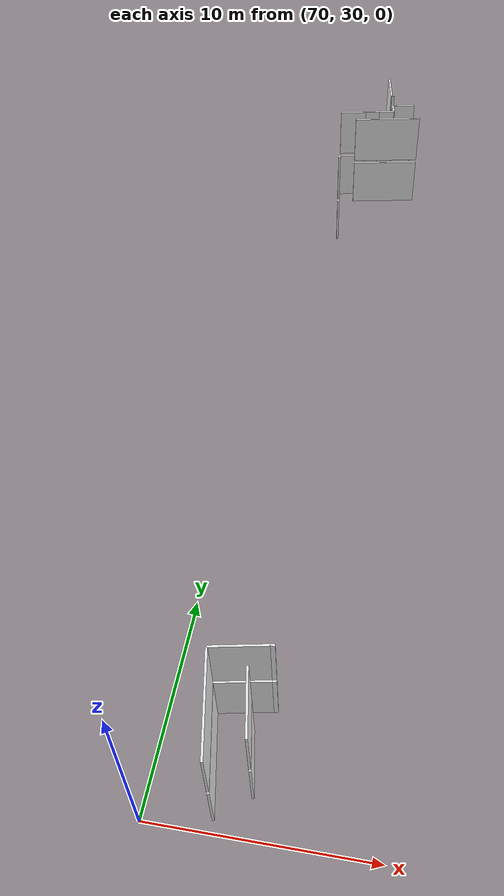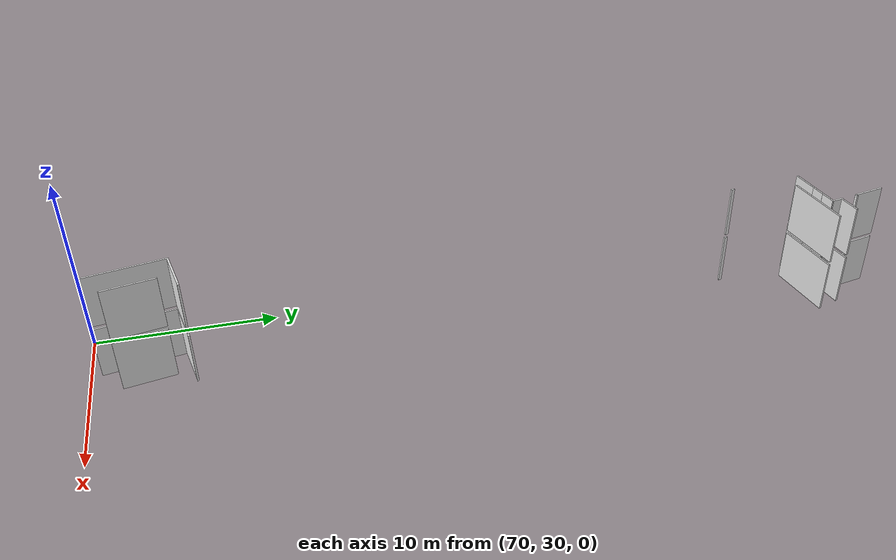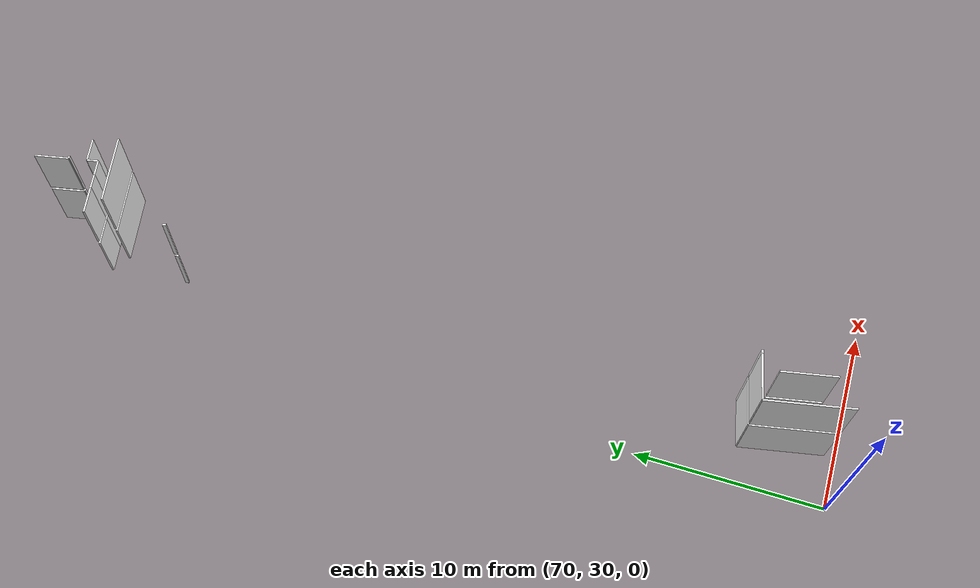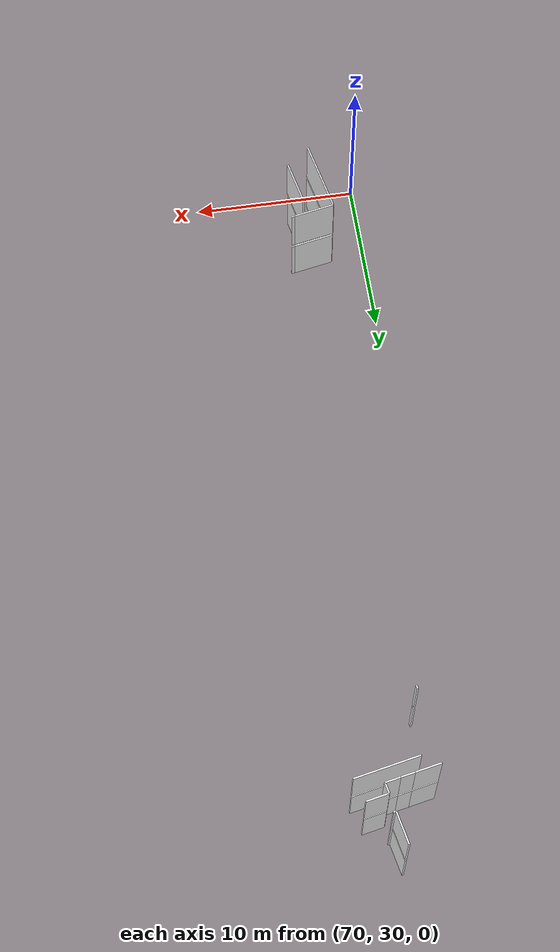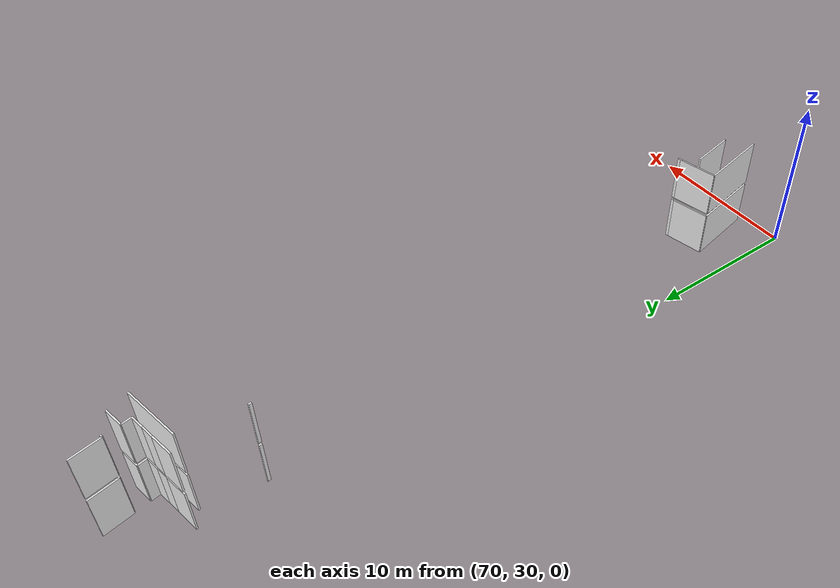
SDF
<sdf version="1.6">
 <world name="default">
  <model name="wall_74.9_72.7_0.0_link">
   <static>true</static>
   <pose>74.86499999999069 72.69500000006519 1.5 0 0 -2.944197095083166</pose>
   <link name="link">
    <visual name="visual">
     <geometry><box><size>0.15297058539043204 0.1 3</size></box></geometry>
     <material>
      <script><uri>file://media/materials/scripts/gazebo.material</uri><name>Gazebo/White</name></script>
     </material>
    </visual>
   </link>
  </model>
  <model name="wall_74.6_73.6_0.0_link">
   <static>true</static>
   <pose>74.60999999998603 73.5800000000745 1.5 0 0 1.7681918866572148</pose>
   <link name="link">
    <visual name="visual">
     <geometry><box><size>1.8356470247080154 0.1 3</size></box></geometry>
     <material>
      <script><uri>file://media/materials/scripts/gazebo.material</uri><name>Gazebo/White</name></script>
     </material>
    </visual>
   </link>
  </model>
  <model name="wall_72.7_70.6_0.0_link">
   <static>true</static>
   <pose>72.72500000000582 70.64500000001863 1.5 0 0 0.19477776480304612</pose>
   <link name="link">
    <visual name="visual">
     <geometry><box><size>1.4983324064140755 0.1 3</size></box></geometry>
     <material>
      <script><uri>file://media/materials/scripts/gazebo.material</uri><name>Gazebo/White</name></script>
     </material>
    </visual>
   </link>
  </model>
  <model name="wall_73.9_70.9_0.0_link">
   <static>true</static>
   <pose>73.85500000001048 70.86499999999069 1.5 0 0 0.18763977169544066</pose>
   <link name="link">
    <visual name="visual">
     <geometry><box><size>0.8041144196810251 0.1 3</size></box></geometry>
     <material>
      <script><uri>file://media/materials/scripts/gazebo.material</uri><name>Gazebo/White</name></script>
     </material>
    </visual>
   </link>
  </model>
  <model name="wall_74.7_71.0_0.0_link">
   <static>true</static>
   <pose>74.67499999998836 71.02499999990687 1.5 0 0 0.19739555977086584</pose>
   <link name="link">
    <visual name="visual">
     <geometry><box><size>0.8668333172733308 0.1 3</size></box></geometry>
     <material>
      <script><uri>file://media/materials/scripts/gazebo.material</uri><name>Gazebo/White</name></script>
     </material>
    </visual>
   </link>
  </model>
  <model name="wall_75.0_71.4_0.0_link">
   <static>true</static>
   <pose>75.03999999997905 71.40500000002794 1.5 0 0 1.7714492040023821</pose>
   <link name="link">
    <visual name="visual">
     <geometry><box><size>0.6020797292489833 0.1 3</size></box></geometry>
     <material>
      <script><uri>file://media/materials/scripts/gazebo.material</uri><name>Gazebo/White</name></script>
     </material>
    </visual>
   </link>
  </model>
  <model name="wall_75.6_71.8_0.0_link">
   <static>true</static>
   <pose>75.61499999999069 71.82500000018626 1.5 0 0 0.1943652660922386</pose>
   <link name="link">
    <visual name="visual">
     <geometry><box><size>1.2943724348298333 0.1 3</size></box></geometry>
     <material>
      <script><uri>file://media/materials/scripts/gazebo.material</uri><name>Gazebo/White</name></script>
     </material>
    </visual>
   </link>
  </model>
  <model name="wall_74.8_70.3_0.0_link">
   <static>true</static>
   <pose>74.83999999999651 70.30000000004657 1.5 0 0 0.19533794952017633</pose>
   <link name="link">
    <visual name="visual">
     <geometry><box><size>3.8125057377015654 0.1 3</size></box></geometry>
     <material>
      <script><uri>file://media/materials/scripts/gazebo.material</uri><name>Gazebo/White</name></script>
     </material>
    </visual>
   </link>
  </model>
  <model name="wall_74.1_33.1_0.0_link">
   <static>true</static>
   <pose>74.06999999997788 33.06499999994412 1.5 0 0 1.7661524605065864</pose>
   <link name="link">
    <visual name="visual">
     <geometry><box><size>2.8848743474229677 0.1 3</size></box></geometry>
     <material>
      <script><uri>file://media/materials/scripts/gazebo.material</uri><name>Gazebo/White</name></script>
     </material>
    </visual>
   </link>
  </model>
  <model name="wall_72.5_66.2_0.0_link">
   <static>true</static>
   <pose>72.52999999999884 66.21500000008382 1.5 0 0 1.77829255318378</pose>
   <link name="link">
    <visual name="visual">
     <geometry><box><size>0.19416487833047835 0.1 3</size></box></geometry>
     <material>
      <script><uri>file://media/materials/scripts/gazebo.material</uri><name>Gazebo/White</name></script>
     </material>
    </visual>
   </link>
  </model>
  <model name="wall_74.6_35.5_0.0_link">
   <static>true</static>
   <pose>74.58499999999185 35.485000000102445 1.5 0 0 -2.9849907776618085</pose>
   <link name="link">
    <visual name="visual">
     <geometry><box><size>0.19235384058705793 0.1 3</size></box></geometry>
     <material>
      <script><uri>file://media/materials/scripts/gazebo.material</uri><name>Gazebo/White</name></script>
     </material>
    </visual>
   </link>
  </model>
  <model name="wall_73.3_35.2_0.0_link">
   <static>true</static>
   <pose>73.27499999999418 35.230000000214204 1.5 0 0 -2.946572386191703</pose>
   <link name="link">
    <visual name="visual">
     <geometry><box><size>2.4769537742856995 0.1 3</size></box></geometry>
     <material>
      <script><uri>file://media/materials/scripts/gazebo.material</uri><name>Gazebo/White</name></script>
     </material>
    </visual>
   </link>
  </model>
  <model name="wall_72.5_32.8_0.0_link">
   <static>true</static>
   <pose>72.5 32.765000000130385 1.5 0 0 -1.3755624583535375</pose>
   <link name="link">
    <visual name="visual">
     <geometry><box><size>4.536176804498029 0.1 3</size></box></geometry>
     <material>
      <script><uri>file://media/materials/scripts/gazebo.material</uri><name>Gazebo/White</name></script>
     </material>
    </visual>
   </link>
  </model>
  <model name="wall_74.9_72.7_3.2_link">
   <static>true</static>
   <pose>74.86499999999069 72.69500000006519 4.7 0 0 -2.944197095083166</pose>
   <link name="link">
    <visual name="visual">
     <geometry><box><size>0.15297058539043204 0.1 3</size></box></geometry>
     <material>
      <script><uri>file://media/materials/scripts/gazebo.material</uri><name>Gazebo/White</name></script>
     </material>
    </visual>
   </link>
  </model>
  <model name="wall_74.6_73.6_3.2_link">
   <static>true</static>
   <pose>74.60999999998603 73.5800000000745 4.7 0 0 1.7681918866572148</pose>
   <link name="link">
    <visual name="visual">
     <geometry><box><size>1.8356470247080154 0.1 3</size></box></geometry>
     <material>
      <script><uri>file://media/materials/scripts/gazebo.material</uri><name>Gazebo/White</name></script>
     </material>
    </visual>
   </link>
  </model>
  <model name="wall_72.7_70.6_3.2_link">
   <static>true</static>
   <pose>72.72500000000582 70.64500000001863 4.7 0 0 0.19477776480304612</pose>
   <link name="link">
    <visual name="visual">
     <geometry><box><size>1.4983324064140755 0.1 3</size></box></geometry>
     <material>
      <script><uri>file://media/materials/scripts/gazebo.material</uri><name>Gazebo/White</name></script>
     </material>
    </visual>
   </link>
  </model>
  <model name="wall_73.9_70.9_3.2_link">
   <static>true</static>
   <pose>73.85500000001048 70.86499999999069 4.7 0 0 0.18763977169544066</pose>
   <link name="link">
    <visual name="visual">
     <geometry><box><size>0.8041144196810251 0.1 3</size></box></geometry>
     <material>
      <script><uri>file://media/materials/scripts/gazebo.material</uri><name>Gazebo/White</name></script>
     </material>
    </visual>
   </link>
  </model>
  <model name="wall_74.7_71.0_3.2_link">
   <static>true</static>
   <pose>74.67499999998836 71.02499999990687 4.7 0 0 0.19739555977086584</pose>
   <link name="link">
    <visual name="visual">
     <geometry><box><size>0.8668333172733308 0.1 3</size></box></geometry>
     <material>
      <script><uri>file://media/materials/scripts/gazebo.material</uri><name>Gazebo/White</name></script>
     </material>
    </visual>
   </link>
  </model>
  <model name="wall_75.0_71.4_3.2_link">
   <static>true</static>
   <pose>75.03999999997905 71.40500000002794 4.7 0 0 1.7714492040023821</pose>
   <link name="link">
    <visual name="visual">
     <geometry><box><size>0.6020797292489833 0.1 3</size></box></geometry>
     <material>
      <script><uri>file://media/materials/scripts/gazebo.material</uri><name>Gazebo/White</name></script>
     </material>
    </visual>
   </link>
  </model>
  <model name="wall_75.6_71.8_3.2_link">
   <static>true</static>
   <pose>75.61499999999069 71.82500000018626 4.7 0 0 0.1943652660922386</pose>
   <link name="link">
    <visual name="visual">
     <geometry><box><size>1.2943724348298333 0.1 3</size></box></geometry>
     <material>
      <script><uri>file://media/materials/scripts/gazebo.material</uri><name>Gazebo/White</name></script>
     </material>
    </visual>
   </link>
  </model>
  <model name="wall_74.8_70.3_3.2_link">
   <static>true</static>
   <pose>74.83999999999651 70.30000000004657 4.7 0 0 0.19533794952017633</pose>
   <link name="link">
    <visual name="visual">
     <geometry><box><size>3.8125057377015654 0.1 3</size></box></geometry>
     <material>
      <script><uri>file://media/materials/scripts/gazebo.material</uri><name>Gazebo/White</name></script>
     </material>
    </visual>
   </link>
  </model>
  <model name="wall_74.1_33.1_3.2_link">
   <static>true</static>
   <pose>74.06999999997788 33.06499999994412 4.7 0 0 1.7661524605065864</pose>
   <link name="link">
    <visual name="visual">
     <geometry><box><size>2.8848743474229677 0.1 3</size></box></geometry>
     <material>
      <script><uri>file://media/materials/scripts/gazebo.material</uri><name>Gazebo/White</name></script>
     </material>
    </visual>
   </link>
  </model>
  <model name="wall_72.5_66.2_3.2_link">
   <static>true</static>
   <pose>72.52999999999884 66.21500000008382 4.7 0 0 1.77829255318378</pose>
   <link name="link">
    <visual name="visual">
     <geometry><box><size>0.19416487833047835 0.1 3</size></box></geometry>
     <material>
      <script><uri>file://media/materials/scripts/gazebo.material</uri><name>Gazebo/White</name></script>
     </material>
    </visual>
   </link>
  </model>
  <model name="wall_74.6_35.5_3.2_link">
   <static>true</static>
   <pose>74.58499999999185 35.485000000102445 4.7 0 0 -2.9849907776618085</pose>
   <link name="link">
    <visual name="visual">
     <geometry><box><size>0.19235384058705793 0.1 3</size></box></geometry>
     <material>
      <script><uri>file://media/materials/scripts/gazebo.material</uri><name>Gazebo/White</name></script>
     </material>
    </visual>
   </link>
  </model>
  <model name="wall_73.3_35.2_3.2_link">
   <static>true</static>
   <pose>73.27499999999418 35.230000000214204 4.7 0 0 -2.946572386191703</pose>
   <link name="link">
    <visual name="visual">
     <geometry><box><size>2.4769537742856995 0.1 3</size></box></geometry>
     <material>
      <script><uri>file://media/materials/scripts/gazebo.material</uri><name>Gazebo/White</name></script>
     </material>
    </visual>
   </link>
  </model>
  <model name="wall_72.5_32.8_3.2_link">
   <static>true</static>
   <pose>72.5 32.765000000130385 4.7 0 0 -1.3755624583535375</pose>
   <link name="link">
    <visual name="visual">
     <geometry><box><size>4.536176804498029 0.1 3</size></box></geometry>
     <material>
      <script><uri>file://media/materials/scripts/gazebo.material</uri><name>Gazebo/White</name></script>
     </material>
    </visual>
   </link>
  </model>
 </world>
</sdf>
